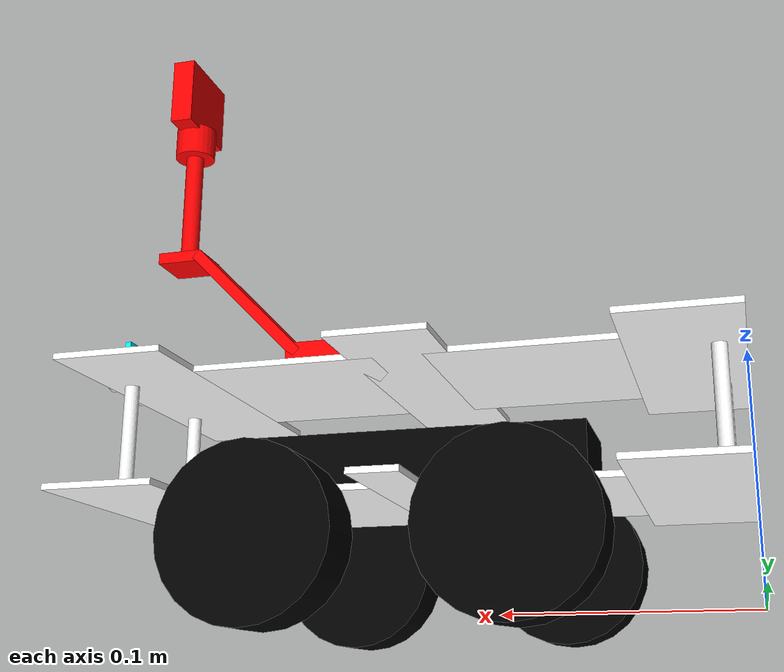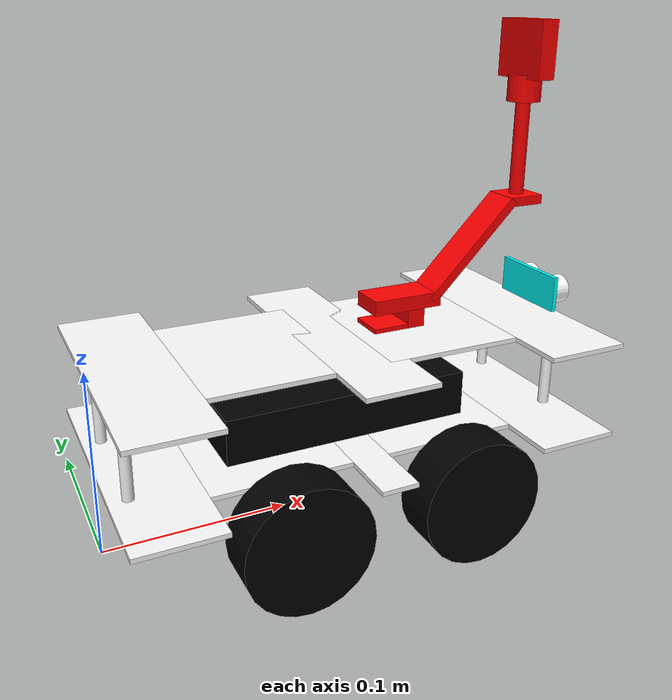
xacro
<?xml version="1.0"?>
<robot xmlns:xacro="http://www.ros.org/wiki/xacro"  name="robot">

    <xacro:include filename="robot_core.xacro"/>
    <xacro:include filename="gazebo_control.xacro"/>

    <xacro:include filename="camera.xacro"/>
    <xacro:include filename="roues.xacro"/>
    <xacro:include filename="cylindres.xacro"/>

</robot>

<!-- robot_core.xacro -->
<robot xmlns:xacro="http://www.ros.org/wiki/xacro"  >
    <xacro:include filename="inertial_macros.xacro"/>
    <material name="white">
        <color rgba="1.0 1.0 1.0 1.0"/>
    </material>

    <material name="black">
        <color rgba="0.0 0.0 0.0 1.0"/>
    </material>

    <material name="red">
        <color rgba="1.0 0.0 0.0 1.0"/>
    </material>
    <material name="yellow">
        <color rgba="1.0 1.0 0.0 1.0"/>
    </material>

    <material name="blue">
        <color rgba="0.0 1.0 1.0 1.0"/>
    </material>

    <material name="green">
        <color rgba="0.0 1.0 0.0 1.0"/>
    </material>
<link name="base_link">

</link>

<!-- Chassis part 1 -->
<joint name="chassis1_joint" type="fixed">
    <parent link="base_link"/>
    <child link="chassis1"/>
    <origin xyz="0.0 0.0 0.0"/>
</joint>
<link name="chassis1">
    <visual>
        <origin xyz="0.0225 0.0 0.045"/>
        <geometry>
            <box size="0.045 0.15 0.0025"/>
        </geometry>
        <material name="white"/>
    </visual>
    <collision>
        <origin xyz="0.0225 0 0.045"/>
        <geometry>
            <box size="0.045 0.15 0.0025"/>
        </geometry>
    </collision>
    <xacro:inertial_box mass="0.0084375" x="0.045" y="0.15" z="0.0025">
        <origin xyz="0.0225 0.0 0.045" rpy="0.0 0.0 0.0"/>
    </xacro:inertial_box>
</link>
<gazebo reference="chassis1">
    <material>Gazebo/White</material>
</gazebo>

<!-- Chassis part 2 -->
<joint name="chassis2_joint" type="fixed">
    <parent link="chassis1"/>
    <child link="chassis2"/>
    <origin xyz="0.0825 0.0 0.045"/>
</joint>
<link name="chassis2">
    <visual>
        <geometry>
            <box size="0.075 0.09 0.0025"/>
        </geometry>
        <material name="white"/>
    </visual>
    <collision>
        <geometry>
            <box size="0.075 0.09 0.0025"/>
        </geometry>
    </collision>
    <xacro:inertial_box mass="0.0084375" x="0.075" y="0.09" z="0.0025">
        <origin xyz="0.0825 0.0 0.045" rpy="0.0 0.0 0.0"/>
    </xacro:inertial_box>
</link>
<gazebo reference="chassis2">
    <material>Gazebo/White</material>
</gazebo>

<!-- Chassis part 3 -->
<joint name="chassis3_joint" type="fixed">
    <parent link="chassis2"/>
    <child link="chassis3"/>
    <origin xyz="0.0475 0.0 0.0"/>
</joint>
<link name="chassis3">
    <visual>
        <geometry>
            <box size="0.02 0.15 0.0025"/>
        </geometry>
        <material name="white"/>
    </visual>
    <collision>
        <geometry>
            <box size="0.02 0.15 0.0025"/>
        </geometry>
    </collision>
    <xacro:inertial_box mass="0.00375" x="0.02" y="0.15" z="0.0025">
        <origin xyz="0.0475 0.0 0.0" rpy="0.0 0.0 0.0"/>
    </xacro:inertial_box>
</link>
<gazebo reference="chassis3">
    <material>Gazebo/White</material>
</gazebo>

<!-- Chassis part 4 -->
<joint name="chassis4_joint" type="fixed">
    <parent link="chassis3"/>
    <child link="chassis4"/>
    <origin xyz="0.0475 0.0 0.0"/>
</joint>
<link name="chassis4">
    <visual>
        <geometry>
            <box size="0.075 0.09 0.0025"/>
        </geometry>
        <material name="white"/>
    </visual>
    <collision>
        <geometry>
            <box size="0.075 0.09 0.0025"/>
        </geometry>
    </collision>
    <xacro:inertial_box mass="0.0084375" x="0.075" y="0.09" z="0.0025">
        <origin xyz="0.0475 0.0 0.0" rpy="0.0 0.0 0.0"/>
    </xacro:inertial_box>
</link>
<gazebo reference="chassis4">
    <material>Gazebo/White</material>
</gazebo>

<!-- Chassis part 5 -->
<joint name="chassis5_joint" type="fixed">
    <parent link="chassis4"/>
    <child link="chassis5"/>
    <origin xyz="0.06 0.0 0.0"/>
</joint>
<link name="chassis5">
    <visual>
        <geometry>
            <box size="0.045 0.15 0.0025"/>
        </geometry>
        <material name="white"/>
    </visual>
    <collision>
        <geometry>
            <box size="0.045 0.15 0.0025"/>
        </geometry>
    </collision>
    <xacro:inertial_box mass="0.00375" x="0.045" y="0.15" z="0.0025">
        <origin xyz="0.06 0.0 0.0" rpy="0.0 0.0 0.0"/>
    </xacro:inertial_box>
</link>
<gazebo reference="chassis5">
    <material>Gazebo/White</material>
</gazebo>

<!-- Chassis part 1 -->
<joint name="chassis11_joint" type="fixed">
    <parent link="base_link"/>
    <child link="chassis11"/>
    <origin xyz="0.0 0.0 0.0"/>
</joint>
<link name="chassis11">
    <visual>
        <origin xyz="0.0225 0.0 0.096"/>
        <geometry>
            <box size="0.045 0.15 0.0025"/>
        </geometry>
        <material name="white"/>
    </visual>
    <collision>
        <origin xyz="0.0225 0 0.096"/>
        <geometry>
            <box size="0.045 0.15 0.0025"/>
        </geometry>
    </collision>
    <xacro:inertial_box mass="0.0084375" x="0.045" y="0.15" z="0.0025">
        <origin xyz="0.0225 0.0 0.096" rpy="0.0 0.0 0.0"/>
    </xacro:inertial_box>
</link>
<gazebo reference="chassis11">
    <material>Gazebo/White</material>
</gazebo>

<!-- Chassis part 2 -->
<joint name="chassis21_joint" type="fixed">
    <parent link="chassis1"/>
    <child link="chassis21"/>
    <origin xyz="0.0825 0.0 0.096"/>
</joint>
<link name="chassis21">
    <visual>
        <geometry>
            <box size="0.075 0.09 0.0025"/>
        </geometry>
        <material name="white"/>
    </visual>
    <collision>
        <geometry>
            <box size="0.075 0.09 0.0025"/>
        </geometry>
    </collision>
    <xacro:inertial_box mass="0.0084375" x="0.075" y="0.09" z="0.0025">
        <origin xyz="0.0825 0.0 0.096" rpy="0.0 0.0 0.0"/>
    </xacro:inertial_box>
</link>
<gazebo reference="chassis21">
    <material>Gazebo/White</material>
</gazebo>

<!-- Chassis part 3 -->
<joint name="chassis31_joint" type="fixed">
    <parent link="chassis2"/>
    <child link="chassis31"/>
    <origin xyz="0.0475 0.0 0.051"/>
</joint>
<link name="chassis31">
    <visual>
        <geometry>
            <box size="0.04 0.15 0.0025"/>
        </geometry>
        <material name="white"/>
    </visual>
    <collision>
        <geometry>
            <box size="0.04 0.15 0.0025"/>
        </geometry>
    </collision>
    <xacro:inertial_box mass="0.00750" x="0.04" y="0.15" z="0.0025">
        <origin xyz="0.0475 0.0 0.051" rpy="0.0 0.0 0.0"/>
    </xacro:inertial_box>
</link>
<gazebo reference="chassis31">
    <material>Gazebo/White</material>
</gazebo>

<!-- Chassis part 4 -->
<joint name="chassis41_joint" type="fixed">
    <parent link="chassis3"/>
    <child link="chassis41"/>
    <origin xyz="0.0475 0.0 0.051"/>
</joint>
<link name="chassis41">
    <visual>
        <geometry>
            <box size="0.075 0.09 0.0025"/>
        </geometry>
        <material name="white"/>
    </visual>
    <collision>
        <geometry>
            <box size="0.075 0.09 0.0025"/>
        </geometry>
    </collision>
    <xacro:inertial_box mass="0.0084375" x="0.075" y="0.09" z="0.0025">
        <origin xyz="0.0475 0.0 0.051" rpy="0.0 0.0 0.0"/>
    </xacro:inertial_box>
</link>
<gazebo reference="chassis41">
    <material>Gazebo/White</material>
</gazebo>

<!-- Chassis part 5 -->
<joint name="chassis51_joint" type="fixed">
    <parent link="chassis4"/>
    <child link="chassis51"/>
    <origin xyz="0.06 0.0 0.051"/>
</joint>
<link name="chassis51">
    <visual>
        <geometry>
            <box size="0.045 0.15 0.0025"/>
        </geometry>
        <material name="white"/>
    </visual>
    <collision>
        <geometry>
            <box size="0.045 0.15 0.0025"/>
        </geometry>
    </collision>
    <xacro:inertial_box mass="0.00375" x="0.045" y="0.15" z="0.0025">
        <origin xyz="0.06 0.0 0.051" rpy="0.0 0.0 0.0"/>
    </xacro:inertial_box>
</link>
<gazebo reference="chassis51">
    <material>Gazebo/White</material>
</gazebo>

<!-- Ultrasonic sensor -->
<joint name="supprot_ultrasoni_joint" type="fixed">
    <parent link="chassis51"/>
    <child link="supprot_ultr"/>
    <origin xyz="0.02 0.0 0.01065"/>
</joint>
<link name="supprot_ultr">
    <visual>
        <geometry>
            <box size="0.0025 0.0457 0.0213"/>
        </geometry>
        <material name="blue"/>
    </visual>
    <collision>
        <geometry>
            <box size="0.0025 0.0457 0.0213"/>
        </geometry>
    </collision>
    <xacro:inertial_box mass="0.00375" x="0.0025" y="0.0457" z="0.0213">
        <origin xyz="0.02 0.0 0.01065" rpy="0.0 0.0 0.0"/>
    </xacro:inertial_box>
</link>
<gazebo reference="supprot_ultr">
    <material>Gazebo/Blue</material>
</gazebo>

<!-- Ultrasonic Trigger -->
<joint name="supprot_trigger_joint" type="fixed">
    <parent link="supprot_ultr"/>
    <child link="supprot_trigger"/>
    <origin xyz="0.006 0.01235 0.0" rpy="0.0 ${pi/2} 0.0"/>
</joint>
<link name="supprot_trigger">
    <visual>
        <geometry>
            <cylinder length="0.012" radius="0.008" />
        </geometry>
        <material name="white"/>
    </visual>
    <collision>
        <geometry>
            <cylinder length="0.012" radius="0.008" />
        </geometry>
    </collision>
    <xacro:inertial_cylinder mass="0.0012063715789784805" length="0.012" radius="0.008">
        <origin xyz="0.006 0.01235 0.0" rpy="0.0 ${pi/2} 0.0"/>
    </xacro:inertial_cylinder>
</link>
<gazebo reference="supprot_trigger">
    <material>Gazebo/White</material>
</gazebo>

<!-- Ultrasonic Echo -->
<joint name="supprot_echo_joint" type="fixed">
    <parent link="supprot_ultr"/>
    <child link="supprot_echo"/>
    <origin xyz="0.006 -0.01235 0.0" rpy="0.0 ${pi/2} 0.0"/>
</joint>
<link name="supprot_echo">
    <visual>
        <geometry>
            <cylinder length="0.012" radius="0.008" />
        </geometry>
        <material name="white"/>
    </visual>
    <collision>
        <geometry>
            <cylinder length="0.012" radius="0.008" />
        </geometry>
    </collision>
    <xacro:inertial_cylinder mass="0.0012063715789784805" length="0.012" radius="0.008">
        <origin xyz="0.006 -0.01235 0.0" rpy="0.0 ${pi/2} 0.0"/>
    </xacro:inertial_cylinder>
</link>
<gazebo reference="supprot_echo">
    <material>Gazebo/White</material>
</gazebo>

<!-- *********************** ULTRASONIC SENSOR ************************  -->
     <joint name="ultrasonic_optical_joint" type="fixed">
        <parent link="supprot_ultr"/>
        <child link="ultrasonic_link_optical"/>
        <origin xyz="0 0 0" rpy="${-pi/2} 0 ${-pi/2}"/>
    </joint>

    <link name="ultrasonic_link_optical"></link>

    <gazebo reference="supprot_ultr">

        <sensor name="ultrasonic_1" type="ray">
            <pose> 0 0 0 0 0 0 </pose>
            <always_on>true</always_on>
            <visualize>true</visualize>
            <update_rate>5</update_rate>
            <ray>
            <scan>
                <horizontal>
                <samples>5</samples>
                <resolution>1.000000</resolution>
                <min_angle>-0.12</min_angle>
                <max_angle>0.12</max_angle>
                </horizontal>
                <vertical>
                <samples>5</samples>
                <resolution>1.000000</resolution>
                <min_angle>-0.01</min_angle>
                <max_angle>0.01</max_angle>
                </vertical>
            </scan>
            <range>
                <min>0.02</min>
                <max>4</max>
                <resolution>0.01</resolution>
            </range>
            <noise>
                <type>gaussian</type>
                <mean>0.0</mean>
                <stddev>0.01</stddev>
            </noise>
            </ray>
            <plugin name="ultrasonic_sensor_1" filename="libgazebo_ros_ray_sensor.so">
            <ros>
                <remapping>~/out:=ultrasonic_sensor_1</remapping>
            </ros>
            <output_type>sensor_msgs/Range</output_type>
            <radiation_type>ultrasound</radiation_type>
            <frame_name>ultrasonic_link_optical</frame_name>
            </plugin>
        </sensor>
    </gazebo>

<!-- *********************** ULTRASONIC SENSOR ************************  -->

<!-- Batterie -->
<joint name="batterie_joint" type="fixed">
    <parent link="chassis3"/>
    <child link="batterie"/>
    <origin xyz="0.0 0.0 0.01375"/>
</joint>
<link name="batterie">
    <visual>
        <geometry>
            <box size="0.1375 0.045 0.025"/>
        </geometry>
        <material name="black"/>
    </visual>
    <collision>
        <geometry>
            <box size="0.1375 0.045 0.025"/>
        </geometry>
    </collision>
    <xacro:inertial_box mass="0.5" x="0.1375" y="0.045" z="0.025">
        <origin xyz="0.0 0.0 0.01375" rpy="0.0 0.0 0.0"/>
    </xacro:inertial_box>
</link>
<gazebo reference="batterie">
    <material>Gazebo/Black</material>
</gazebo>

</robot>

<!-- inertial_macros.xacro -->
<robot xmlns:xacro="http://www.ros.org/wiki/xacro" >

    <!-- Specify some standard inertial calculations https://en.wikipedia.org/wiki/List_of_moments_of_inertia -->
    <!-- These make use of xacro's mathematical functionality -->

    <xacro:macro name="inertial_sphere" params="mass radius *origin">
        <inertial>
            <xacro:insert_block name="origin"/>
            <mass value="${mass}" />
            <inertia ixx="${(2/5) * mass * (radius*radius)}" ixy="0.0" ixz="0.0"
                    iyy="${(2/5) * mass * (radius*radius)}" iyz="0.0"
                    izz="${(2/5) * mass * (radius*radius)}" />
        </inertial>
    </xacro:macro>

    <xacro:macro name="inertial_box" params="mass x y z *origin">
        <inertial>
            <xacro:insert_block name="origin"/>
            <mass value="${mass}" />
            <inertia ixx="${(1/12) * mass * (y*y+z*z)}" ixy="0.0" ixz="0.0"
                    iyy="${(1/12) * mass * (x*x+z*z)}" iyz="0.0"
                    izz="${(1/12) * mass * (x*x+y*y)}" />
        </inertial>
    </xacro:macro>

    <!-- length="0.025" radius="0.0335" m = 100g = 0.1Kg
    ixx=0.000033264583
    iyy=0.000033264583
    izz=0.00002805625-->

    <xacro:macro name="inertial_cylinder" params="mass length radius *origin">
        <inertial>
            <xacro:insert_block name="origin"/>
            <mass value="${mass}" />
            <inertia ixx="${(1/12) * mass * (3*radius*radius + length*length)}" ixy="0.0" ixz="0.0"
                    iyy="${(1/12) * mass * (3*radius*radius + length*length)}" iyz="0.0"
                    izz="${(1/2) * mass * (radius*radius)}" />
        </inertial>
    </xacro:macro>

</robot>

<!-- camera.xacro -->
<robot xmlns:xacro="http://www.ros.org/wiki/xacro" >

    <joint name="camera_joint1" type="fixed">
        <parent link="chassis41"/>
        <child link="camera_link1"/>
        <origin xyz="-0.0175 0 0.0025" rpy="0 0 0"/>
    </joint>

    <link name="camera_link1">
        <visual>
            <geometry>
                <box size="0.02 0.02 0.0025"/>
            </geometry>
            <material name="red"/>
        </visual>
        <collision>
            <geometry>
                <box size="0.02 0.02 0.0025"/>
            </geometry>
        </collision>
        <xacro:inertial_box mass="0.0005" x="0.02" y="0.02" z="0.0025">
            <origin xyz="-0.0175 0.0 0.0025" rpy="0.0 0.0 0.0"/>
        </xacro:inertial_box>
    </link>

    <joint name="camera_joint2" type="fixed">
        <parent link="camera_link1"/>
        <child link="camera_link2"/>
        <origin xyz="0.015 0.0 0.00375" rpy="0 0 0"/>
    </joint>

    <link name="camera_link2">
        <visual>
            <geometry>
                 <box size="0.01 0.02 0.01"/>
            </geometry>
            <material name="red"/>
        </visual>
        <collision>
            <geometry>
                 <box size="0.01 0.02 0.01"/>
            </geometry>
        </collision>
        <xacro:inertial_box mass="0.001" x="0.01" y="0.02" z="0.01">
            <origin xyz="0.015 0.0 0.00375" rpy="0.0 0.0 0.0"/>
        </xacro:inertial_box>
    </link>

    <joint name="camera_joint3" type="fixed">
        <parent link="camera_link2"/>
        <child link="camera_link3"/>
        <origin xyz="-0.005 0 0.009" rpy="0 0 0"/>
    </joint>

    <link name="camera_link3">
        <visual>
            <geometry>
                 <box size="0.04 0.02 0.008"/>
            </geometry>
            <material name="red"/>
        </visual>
        <collision>
            <geometry>
                 <box size="0.04 0.02 0.008"/>
            </geometry>
        </collision>
        <xacro:inertial_box mass="0.0032" x="0.04" y="0.02" z="0.008">
            <origin xyz="-0.005 0 0.009" rpy="0.0 0.0 0.0"/>
        </xacro:inertial_box>
    </link>

    <joint name="camera_joint4" type="fixed">
        <parent link="camera_link3"/>
        <child link="camera_link4"/>
        <origin xyz="0.04 0 0.0245" rpy="0 ${0.775193} 0"/>
    </joint>

    <link name="camera_link4">
        <visual>
            <geometry>
                 <box size="0.005 0.02 0.07"/>
            </geometry>
            <material name="red"/>
        </visual>
        <collision>
            <geometry>
                 <box size="0.005 0.02 0.07"/>
            </geometry>
        </collision>
        <xacro:inertial_box mass="0.0035" x="0.005" y="0.02" z="0.07">
            <origin xyz="0.04 0 0.0245" rpy="0.0 ${0.775193} 0.0"/>
        </xacro:inertial_box>
    </link>

    <joint name="camera_joint5" type="fixed">
        <parent link="camera_link3"/>
        <child link="camera_link5"/>
        <origin xyz="0.0725 0 0.0487" rpy="0 0 0"/>
    </joint>

    <link name="camera_link5">
        <visual>
            <geometry>
                 <box size="0.02 0.02 0.005"/>
            </geometry>
            <material name="red"/>
        </visual>
        <collision>
            <geometry>
                 <box size="0.02 0.02 0.005"/>
            </geometry>
        </collision>
        <xacro:inertial_box mass="0.001" x="0.02" y="0.02" z="0.005">
            <origin xyz="0.0725 0 0.0487" rpy="0.0 0.0 0.0"/>
        </xacro:inertial_box>
    </link>

    <joint name="camera_joint6" type="fixed">
        <parent link="camera_link5"/>
        <child link="camera_link6"/>
        <origin xyz="0 0 0.0275" rpy="0 0 0"/>
    </joint>

    <link name="camera_link6">
        <visual>
            <geometry>
                 <cylinder length="0.05" radius="0.004" />
            </geometry>
            <material name="red"/>
        </visual>
        <collision>
            <geometry>
                 <cylinder length="0.05" radius="0.004" />
            </geometry>
        </collision>
        <xacro:inertial_cylinder mass="0.001256637" length="0.05" radius="0.004">
            <origin xyz="0 0 0.0275" rpy="0.0 0.0 0.0"/>
        </xacro:inertial_cylinder>
    </link>

    <joint name="camera_joint7" type="fixed">
        <parent link="camera_link6"/>
        <child link="camera_link7"/>
        <origin xyz="0 0 0.032" rpy="0 0 0"/>
    </joint>

    <link name="camera_link7">
        <visual>
            <geometry>
                 <cylinder length="0.014" radius="0.009" />
            </geometry>
            <material name="red"/>
        </visual>
        <collision>
            <geometry>
                 <cylinder length="0.014" radius="0.009" />
            </geometry>
        </collision>
        <xacro:inertial_cylinder mass="0.001781283" length="0.05" radius="0.004">
            <origin xyz="0 0 0.032" rpy="0.0 0.0 0.0"/>
        </xacro:inertial_cylinder>
    </link>

     <joint name="camera_joint8" type="fixed">
        <parent link="camera_link7"/>
        <child link="camera_link8"/>
        <origin xyz="0.0 0.0 0.02" rpy="0 0 0"/>
    </joint>

    <link name="camera_link8">
        <visual>
            <geometry>
                 <box size="0.01 0.034 0.03"/>
            </geometry>
            <material name="red"/>
        </visual>
        <collision>
            <geometry>
                 <box size="0.01 0.034 0.03"/>
            </geometry>
        </collision>
        <xacro:inertial_box mass="0.0051" x="0.01" y="0.034" z="0.03">
            <origin xyz="0.0 0.0 0.02" rpy="0.0 0 0.0"/>
        </xacro:inertial_box>
    </link>

     <joint name="camera_optical_joint" type="fixed">
        <parent link="camera_link8"/>
        <child link="camera_link_optical"/>
        <origin xyz="0 0 0" rpy="${-pi/2} 0 ${-pi/2}"/>
    </joint>

    <link name="camera_link_optical"></link>

    <gazebo reference="camera_link8">
        <material>Gazebo/Red</material>

        <sensor name="camera" type="camera">
            <pose> 0 0 0 0 0 0 </pose>
            <visualize>true</visualize>
            <update_rate>10</update_rate>
            <camera>
                <horizontal_fov>1.1519</horizontal_fov>
                <image>
                    <format>R8G8B8</format>
                    <width>640</width>
                    <height>480</height>
                </image>
                <clip>
                    <near>0.03</near>
                    <far>8.0</far>
                </clip>
            </camera>
            <plugin name="camera_controller" filename="libgazebo_ros_camera.so">
                <frame_name>camera_link_optical</frame_name>
            </plugin>
        </sensor>
    </gazebo>

</robot>

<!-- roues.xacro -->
<robot xmlns:xacro="http://www.ros.org/wiki/xacro" >

<xacro:property name="my_param" value="0.001" />
<!-- rear left -->

<joint name="rear_left_wheel_joint" type="continuous">
    <parent link="chassis2"/>
    <child link="rear_left"/>
    <origin xyz="0.0 0.065 -0.02" rpy="-${pi/2} 0 0"/>
    <axis xyz="0 0 1"/>
</joint>

<link name="rear_left">
    <visual>
        <geometry>
            <cylinder length="0.025" radius="0.0335" />
        </geometry >
        <material name="black"/>
    </visual>
    <collision>
        <geometry>
            <cylinder length="0.025" radius="0.0335" />
        </geometry>
    </collision>
    <xacro:inertial_cylinder mass="0.044070654" length="0.025" radius="0.0335">
        <origin xyz="0.0 0.065 -0.02" rpy="0.0 0.0 0.0"/>
    </xacro:inertial_cylinder>

</link>
<gazebo reference="rear_left">
    <material>Gazebo/Black</material>
</gazebo>

<!-- rear right-->

<joint name="rear_right_wheel_joint" type="continuous">
    <parent link="chassis2"/>
    <child link="rear_right"/>
    <origin xyz="0.0 -0.065 -0.02" rpy="${pi/2} 0 0"/>
    <axis xyz="0 0 -1"/>
</joint>

<link name="rear_right">
    <visual>
        <geometry>
            <cylinder length="0.025" radius="0.0335" />
        </geometry>
        <material name="black"/>
    </visual>
    <collision>
        <geometry>
            <cylinder length="0.025" radius="0.0335" />
        </geometry>
    </collision>
    <xacro:inertial_cylinder mass="0.044070654" length="0.025" radius="0.0335">
        <origin xyz="0.0 -0.065 -0.02" rpy="0.0 0.0 0.0"/>
    </xacro:inertial_cylinder>
</link>

<gazebo reference="rear_right">
    <material>Gazebo/Black</material>
</gazebo>

<!-- front left -->

<!-- front right-->

<!-- ##################################################################  khdaaamm  ########################################################## -->

<!-- front left -->

<joint name="caster_wheel1_joint" type="fixed">
    <parent link="chassis4"/>
    <child link="caster_wheel1"/>
    <origin xyz="0.0 0.065 -0.02" rpy="-${pi/2} 0 0"/>
    <axis xyz="0 0 1"/>
</joint>

<link name="caster_wheel1">
    <visual>
        <geometry>
            <cylinder length="0.025" radius="0.0335" />
        </geometry>
        <material name="black"/>
    </visual>
    <collision>
        <geometry>
            <cylinder length="0.025" radius="0.0335" />
        </geometry>
    </collision>
    <xacro:inertial_cylinder mass="0.044070654" length="0.025" radius="0.0335">
        <origin xyz="0.0 0.065 -0.02" rpy="0.0 0.0 0.0"/>
    </xacro:inertial_cylinder>
</link>

<gazebo reference="caster_wheel1">
    <material>Gazebo/Black</material>
    <mu1 value="${my_param}"/>
    <mu2 value="${my_param}"/>
</gazebo>

<!-- front right -->

<joint name="caster_wheel2_joint" type="fixed">
    <parent link="chassis4"/>
    <child link="caster_wheel2"/>
    <origin xyz="0.0 -0.065 -0.02" rpy="${pi/2} 0 0"/>
    <axis xyz="0 0 -1"/>
</joint>

<link name="caster_wheel2">
    <visual>
        <geometry>
            <cylinder length="0.025" radius="0.0335" />
        </geometry>
        <material name="black"/>
    </visual>
    <collision>
        <geometry>
            <cylinder length="0.025" radius="0.0335" />
        </geometry>
    </collision>
    <xacro:inertial_cylinder mass="0.044070654" length="0.025" radius="0.0335">
        <origin xyz="0.0 -0.065 -0.02" rpy="0.0 0.0 0.0"/>
    </xacro:inertial_cylinder>
</link>
<gazebo reference="caster_wheel2">
    <material>Gazebo/Black</material>
    <mu1 value="${my_param}"/>
    <mu2 value="${my_param}"/>
</gazebo>

</robot>

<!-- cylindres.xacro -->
<robot xmlns:xacro="http://www.ros.org/wiki/xacro" >
<!--Cylindre 1  -->
<joint name="cylindre1_joint" type="fixed">
        <parent link="chassis1"/>
        <child link="cylindre1"/>
        <origin xyz="0.01 0.03 0.07" rpy="0 0 0"/>
    </joint>

    <link name="cylindre1">
        <visual>
            <geometry>
                 <cylinder length="0.05" radius="0.003" />
            </geometry>
            <material name="white"/>
        </visual>
        <collision>
            <geometry>
                 <cylinder length="0.05" radius="0.003" />
            </geometry>
        </collision>
        <xacro:inertial_cylinder mass="0.000706858" length="0.05" radius="0.003">
            <origin xyz="0.01 0.03 0.07" rpy="0.0 0.0 0.0"/>
        </xacro:inertial_cylinder>
    </link>
<gazebo reference="cylindre1">
    <material>Gazebo/White</material>
</gazebo>

<!--Cylindre 2  -->
<joint name="cylindre2_joint" type="fixed">
        <parent link="chassis1"/>
        <child link="cylindre2"/>
        <origin xyz="0.01 -0.03 0.07" rpy="0 0 0"/>
    </joint>

    <link name="cylindre2">
        <visual>
            <geometry>
                 <cylinder length="0.05" radius="0.003" />
            </geometry>
            <material name="white"/>
        </visual>
        <collision>
            <geometry>
                 <cylinder length="0.05" radius="0.003" />
            </geometry>
        </collision>
        <xacro:inertial_cylinder mass="0.000706858" length="0.05" radius="0.003">
            <origin xyz="0.01 -0.03 0.07" rpy="0.0 0.0 0.0"/>
        </xacro:inertial_cylinder>
    </link>
<gazebo reference="cylindre2">
    <material>Gazebo/White</material>
</gazebo>

<!--Cylindre 3  -->
<joint name="cylindre3_joint" type="fixed">
        <parent link="chassis5"/>
        <child link="cylindre3"/>
        <origin xyz="0.0125 -0.03 0.025" rpy="0 0 0"/>
    </joint>

    <link name="cylindre3">
        <visual>
            <geometry>
                 <cylinder length="0.05" radius="0.003" />
            </geometry>
            <material name="white"/>
        </visual>
        <collision>
            <geometry>
                 <cylinder length="0.05" radius="0.003" />
            </geometry>
        </collision>
        <xacro:inertial_cylinder mass="0.000706858" length="0.05" radius="0.003">
            <origin xyz="0.0125 -0.03 0.025" rpy="0.0 0.0 0.0"/>
        </xacro:inertial_cylinder>
    </link>
<gazebo reference="cylindre3">
    <material>Gazebo/White</material>
</gazebo>

<!--Cylindre 4  -->
<joint name="cylindre4_joint" type="fixed">
        <parent link="chassis5"/>
        <child link="cylindre4"/>
        <origin xyz="0.0125 0.03 0.025" rpy="0 0 0"/>
    </joint>

    <link name="cylindre4">
        <visual>
            <geometry>
                 <cylinder length="0.05" radius="0.003" />
            </geometry>
            <material name="white"/>
        </visual>
        <collision>
            <geometry>
                 <cylinder length="0.05" radius="0.003" />
            </geometry>
        </collision>
        <xacro:inertial_cylinder mass="0.000706858" length="0.05" radius="0.003">
            <origin xyz="0.0125 0.03 0.025" rpy="0.0 0.0 0.0"/>
        </xacro:inertial_cylinder>
    </link>
<gazebo reference="cylindre4">
    <material>Gazebo/White</material>
</gazebo>

</robot>
